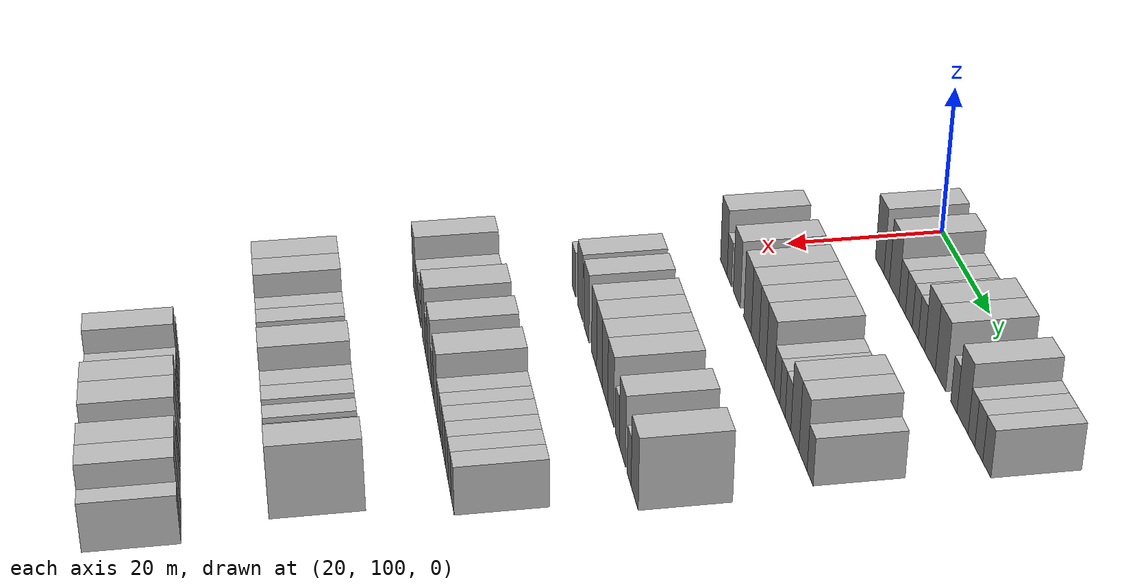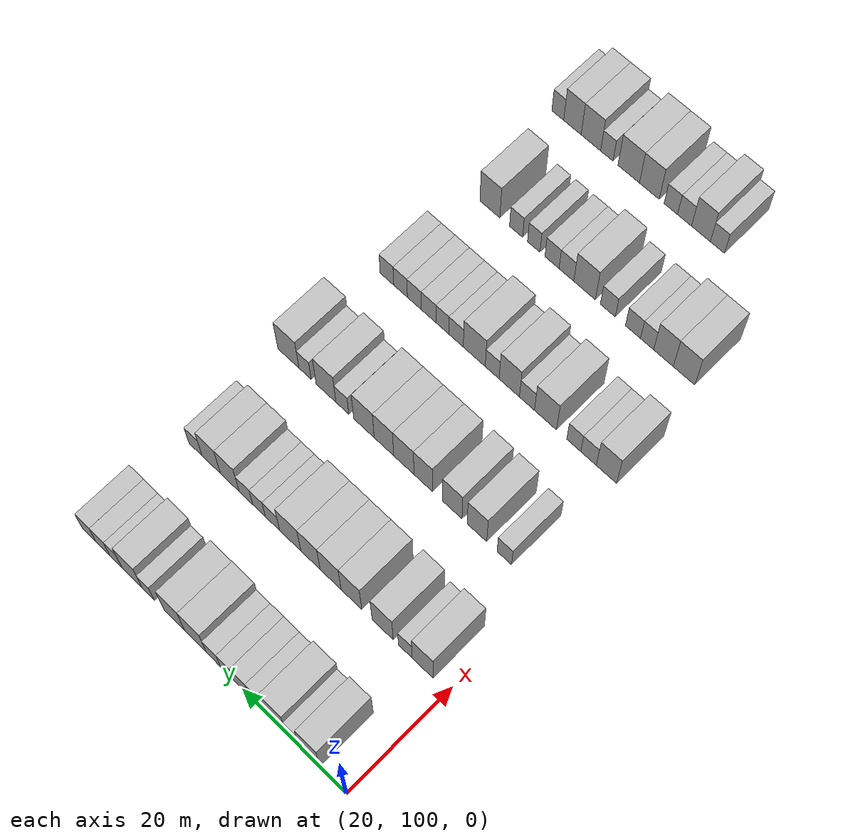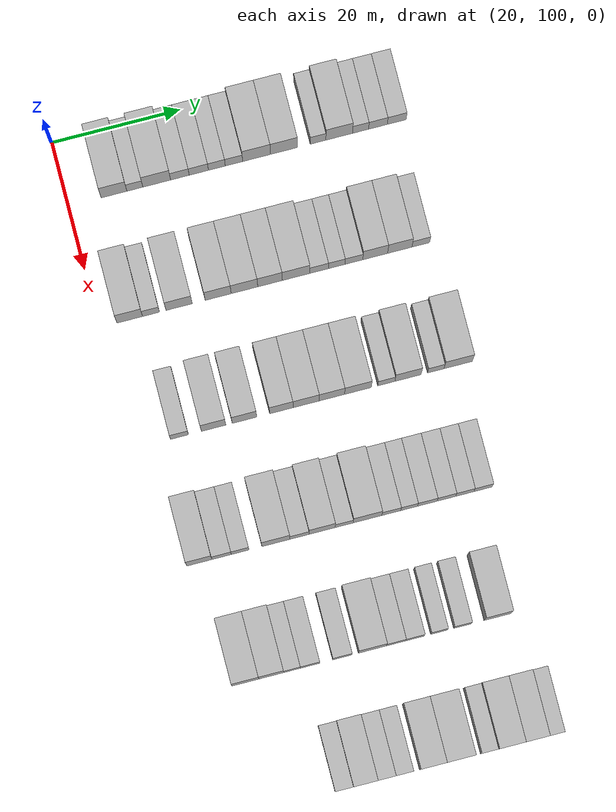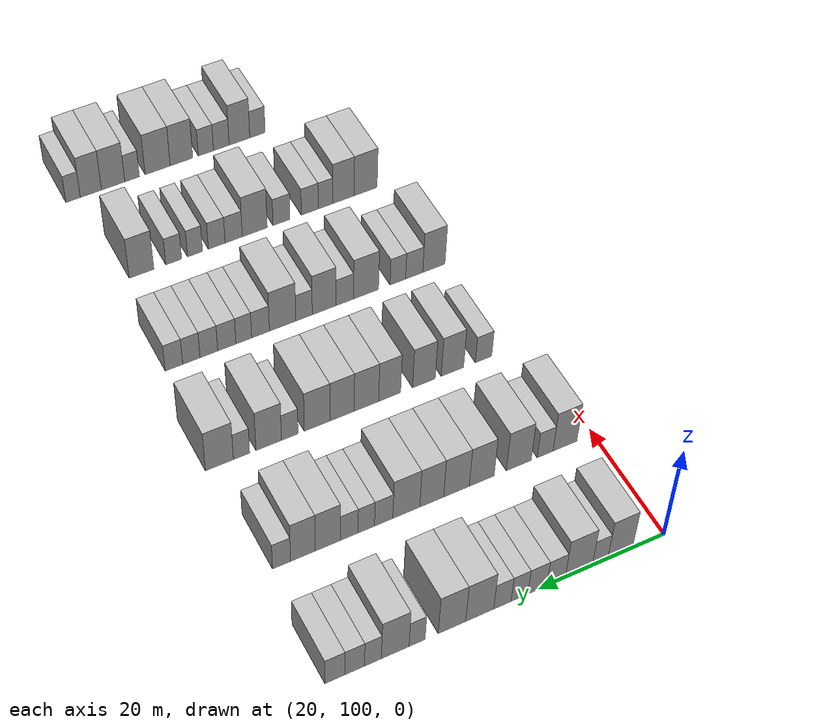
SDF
<sdf version="1.6">
 <world name="default">
  <model name="building_123">
   <static>1</static>
   <pose>25.0000 107.1154 0 0.000000 0.000000 0.000000</pose>
   <link name="link">
    <pose>0 0 4.50 0 0 0</pose>
    <collision name="collision"><geometry><box><size>10.0000 4.0118 9.0000</size></box></geometry></collision>
    <visual name="visual">
     <cast_shadows>0</cast_shadows>
     <geometry><box><size>10.0000 4.0118 9.0000</size></box></geometry>
     <material>
      <script>
       <uri>model://HANNAS_wall/materials/scripts</uri>
       <uri>model://HANNAS_wall/materials/textures</uri>
       <name>vrc/HANNAS_wall</name>
      </script>
     </material>
    </visual>
   </link>
  </model>
  <model name="building_124">
   <static>1</static>
   <pose>25.0000 110.3565 0 0.000000 0.000000 0.000000</pose>
   <link name="link">
    <pose>0 0 3.00 0 0 0</pose>
    <collision name="collision"><geometry><box><size>10.0000 2.4706 6.0000</size></box></geometry></collision>
    <visual name="visual">
     <cast_shadows>0</cast_shadows>
     <geometry><box><size>10.0000 2.4706 6.0000</size></box></geometry>
     <material>
      <script>
       <uri>model://HANNAS_wall/materials/scripts</uri>
       <uri>model://HANNAS_wall/materials/textures</uri>
       <name>vrc/HANNAS_wall</name>
      </script>
     </material>
    </visual>
   </link>
  </model>
  <model name="building_125">
   <static>1</static>
   <pose>25.0000 113.7517 0 0.000000 0.000000 0.000000</pose>
   <link name="link">
    <pose>0 0 4.50 0 0 0</pose>
    <collision name="collision"><geometry><box><size>10.0000 4.3196 9.0000</size></box></geometry></collision>
    <visual name="visual">
     <cast_shadows>0</cast_shadows>
     <geometry><box><size>10.0000 4.3196 9.0000</size></box></geometry>
     <material>
      <script>
       <uri>model://HANNAS_wall/materials/scripts</uri>
       <uri>model://HANNAS_wall/materials/textures</uri>
       <name>vrc/HANNAS_wall</name>
      </script>
     </material>
    </visual>
   </link>
  </model>
  <model name="building_126">
   <static>1</static>
   <pose>25.0000 117.3569 0 0.000000 0.000000 0.000000</pose>
   <link name="link">
    <pose>0 0 3.00 0 0 0</pose>
    <collision name="collision"><geometry><box><size>10.0000 2.8909 6.0000</size></box></geometry></collision>
    <visual name="visual">
     <cast_shadows>0</cast_shadows>
     <geometry><box><size>10.0000 2.8909 6.0000</size></box></geometry>
     <material>
      <script>
       <uri>model://HANNAS_wall/materials/scripts</uri>
       <uri>model://HANNAS_wall/materials/textures</uri>
       <name>vrc/HANNAS_wall</name>
      </script>
     </material>
    </visual>
   </link>
  </model>
  <model name="building_127">
   <static>1</static>
   <pose>25.0000 120.2966 0 0.000000 0.000000 0.000000</pose>
   <link name="link">
    <pose>0 0 3.00 0 0 0</pose>
    <collision name="collision"><geometry><box><size>10.0000 2.9885 6.0000</size></box></geometry></collision>
    <visual name="visual">
     <cast_shadows>0</cast_shadows>
     <geometry><box><size>10.0000 2.9885 6.0000</size></box></geometry>
     <material>
      <script>
       <uri>model://HANNAS_wall/materials/scripts</uri>
       <uri>model://HANNAS_wall/materials/textures</uri>
       <name>vrc/HANNAS_wall</name>
      </script>
     </material>
    </visual>
   </link>
  </model>
  <model name="building_128">
   <static>1</static>
   <pose>25.0000 123.0992 0 0.000000 0.000000 0.000000</pose>
   <link name="link">
    <pose>0 0 3.00 0 0 0</pose>
    <collision name="collision"><geometry><box><size>10.0000 2.6167 6.0000</size></box></geometry></collision>
    <visual name="visual">
     <cast_shadows>0</cast_shadows>
     <geometry><box><size>10.0000 2.6167 6.0000</size></box></geometry>
     <material>
      <script>
       <uri>model://HANNAS_wall/materials/scripts</uri>
       <uri>model://HANNAS_wall/materials/textures</uri>
       <name>vrc/HANNAS_wall</name>
      </script>
     </material>
    </visual>
   </link>
  </model>
  <model name="building_129">
   <static>1</static>
   <pose>25.0000 125.7601 0 0.000000 0.000000 0.000000</pose>
   <link name="link">
    <pose>0 0 3.00 0 0 0</pose>
    <collision name="collision"><geometry><box><size>10.0000 2.7051 6.0000</size></box></geometry></collision>
    <visual name="visual">
     <cast_shadows>0</cast_shadows>
     <geometry><box><size>10.0000 2.7051 6.0000</size></box></geometry>
     <material>
      <script>
       <uri>model://HANNAS_wall/materials/scripts</uri>
       <uri>model://HANNAS_wall/materials/textures</uri>
       <name>vrc/HANNAS_wall</name>
      </script>
     </material>
    </visual>
   </link>
  </model>
  <model name="building_130">
   <static>1</static>
   <pose>25.0000 129.2807 0 0.000000 0.000000 0.000000</pose>
   <link name="link">
    <pose>0 0 4.50 0 0 0</pose>
    <collision name="collision"><geometry><box><size>10.0000 4.3361 9.0000</size></box></geometry></collision>
    <visual name="visual">
     <cast_shadows>0</cast_shadows>
     <geometry><box><size>10.0000 4.3361 9.0000</size></box></geometry>
     <material>
      <script>
       <uri>model://HANNAS_wall/materials/scripts</uri>
       <uri>model://HANNAS_wall/materials/textures</uri>
       <name>vrc/HANNAS_wall</name>
      </script>
     </material>
    </visual>
   </link>
  </model>
  <model name="building_131">
   <static>1</static>
   <pose>25.0000 133.5443 0 0.000000 0.000000 0.000000</pose>
   <link name="link">
    <pose>0 0 4.50 0 0 0</pose>
    <collision name="collision"><geometry><box><size>10.0000 4.1912 9.0000</size></box></geometry></collision>
    <visual name="visual">
     <cast_shadows>0</cast_shadows>
     <geometry><box><size>10.0000 4.1912 9.0000</size></box></geometry>
     <material>
      <script>
       <uri>model://HANNAS_wall/materials/scripts</uri>
       <uri>model://HANNAS_wall/materials/textures</uri>
       <name>vrc/HANNAS_wall</name>
      </script>
     </material>
    </visual>
   </link>
  </model>
  <model name="building_132">
   <static>1</static>
   <pose>25.0000 138.8533 0 0.000000 0.000000 0.000000</pose>
   <link name="link">
    <pose>0 0 3.00 0 0 0</pose>
    <collision name="collision"><geometry><box><size>10.0000 2.4268 6.0000</size></box></geometry></collision>
    <visual name="visual">
     <cast_shadows>0</cast_shadows>
     <geometry><box><size>10.0000 2.4268 6.0000</size></box></geometry>
     <material>
      <script>
       <uri>model://HANNAS_wall/materials/scripts</uri>
       <uri>model://HANNAS_wall/materials/textures</uri>
       <name>vrc/HANNAS_wall</name>
      </script>
     </material>
    </visual>
   </link>
  </model>
  <model name="building_133">
   <static>1</static>
   <pose>25.0000 142.1488 0 0.000000 0.000000 0.000000</pose>
   <link name="link">
    <pose>0 0 4.50 0 0 0</pose>
    <collision name="collision"><geometry><box><size>10.0000 4.1640 9.0000</size></box></geometry></collision>
    <visual name="visual">
     <cast_shadows>0</cast_shadows>
     <geometry><box><size>10.0000 4.1640 9.0000</size></box></geometry>
     <material>
      <script>
       <uri>model://HANNAS_wall/materials/scripts</uri>
       <uri>model://HANNAS_wall/materials/textures</uri>
       <name>vrc/HANNAS_wall</name>
      </script>
     </material>
    </visual>
   </link>
  </model>
  <model name="building_134">
   <static>1</static>
   <pose>25.0000 145.4824 0 0.000000 0.000000 0.000000</pose>
   <link name="link">
    <pose>0 0 3.00 0 0 0</pose>
    <collision name="collision"><geometry><box><size>10.0000 2.5032 6.0000</size></box></geometry></collision>
    <visual name="visual">
     <cast_shadows>0</cast_shadows>
     <geometry><box><size>10.0000 2.5032 6.0000</size></box></geometry>
     <material>
      <script>
       <uri>model://HANNAS_wall/materials/scripts</uri>
       <uri>model://HANNAS_wall/materials/textures</uri>
       <name>vrc/HANNAS_wall</name>
      </script>
     </material>
    </visual>
   </link>
  </model>
  <model name="building_135">
   <static>1</static>
   <pose>25.0000 148.1906 0 0.000000 0.000000 0.000000</pose>
   <link name="link">
    <pose>0 0 3.00 0 0 0</pose>
    <collision name="collision"><geometry><box><size>10.0000 2.9133 6.0000</size></box></geometry></collision>
    <visual name="visual">
     <cast_shadows>0</cast_shadows>
     <geometry><box><size>10.0000 2.9133 6.0000</size></box></geometry>
     <material>
      <script>
       <uri>model://HANNAS_wall/materials/scripts</uri>
       <uri>model://HANNAS_wall/materials/textures</uri>
       <name>vrc/HANNAS_wall</name>
      </script>
     </material>
    </visual>
   </link>
  </model>
  <model name="building_136">
   <static>1</static>
   <pose>25.0000 151.1215 0 0.000000 0.000000 0.000000</pose>
   <link name="link">
    <pose>0 0 3.00 0 0 0</pose>
    <collision name="collision"><geometry><box><size>10.0000 2.9484 6.0000</size></box></geometry></collision>
    <visual name="visual">
     <cast_shadows>0</cast_shadows>
     <geometry><box><size>10.0000 2.9484 6.0000</size></box></geometry>
     <material>
      <script>
       <uri>model://HANNAS_wall/materials/scripts</uri>
       <uri>model://HANNAS_wall/materials/textures</uri>
       <name>vrc/HANNAS_wall</name>
      </script>
     </material>
    </visual>
   </link>
  </model>
  <model name="building_298">
   <static>1</static>
   <pose>44.0000 104.7258 0 0.000000 0.000000 0.000000</pose>
   <link name="link">
    <pose>0 0 4.50 0 0 0</pose>
    <collision name="collision"><geometry><box><size>10.0000 3.9755 9.0000</size></box></geometry></collision>
    <visual name="visual">
     <cast_shadows>0</cast_shadows>
     <geometry><box><size>10.0000 3.9755 9.0000</size></box></geometry>
     <material>
      <script>
       <uri>model://HANNAS_wall/materials/scripts</uri>
       <uri>model://HANNAS_wall/materials/textures</uri>
       <name>vrc/HANNAS_wall</name>
      </script>
     </material>
    </visual>
   </link>
  </model>
  <model name="building_299">
   <static>1</static>
   <pose>44.0000 108.0229 0 0.000000 0.000000 0.000000</pose>
   <link name="link">
    <pose>0 0 3.00 0 0 0</pose>
    <collision name="collision"><geometry><box><size>10.0000 2.6188 6.0000</size></box></geometry></collision>
    <visual name="visual">
     <cast_shadows>0</cast_shadows>
     <geometry><box><size>10.0000 2.6188 6.0000</size></box></geometry>
     <material>
      <script>
       <uri>model://HANNAS_wall/materials/scripts</uri>
       <uri>model://HANNAS_wall/materials/textures</uri>
       <name>vrc/HANNAS_wall</name>
      </script>
     </material>
    </visual>
   </link>
  </model>
  <model name="building_300">
   <static>1</static>
   <pose>44.0000 112.3701 0 0.000000 0.000000 0.000000</pose>
   <link name="link">
    <pose>0 0 4.50 0 0 0</pose>
    <collision name="collision"><geometry><box><size>10.0000 4.0756 9.0000</size></box></geometry></collision>
    <visual name="visual">
     <cast_shadows>0</cast_shadows>
     <geometry><box><size>10.0000 4.0756 9.0000</size></box></geometry>
     <material>
      <script>
       <uri>model://HANNAS_wall/materials/scripts</uri>
       <uri>model://HANNAS_wall/materials/textures</uri>
       <name>vrc/HANNAS_wall</name>
      </script>
     </material>
    </visual>
   </link>
  </model>
  <model name="building_301">
   <static>1</static>
   <pose>44.0000 118.4263 0 0.000000 0.000000 0.000000</pose>
   <link name="link">
    <pose>0 0 4.50 0 0 0</pose>
    <collision name="collision"><geometry><box><size>10.0000 4.0368 9.0000</size></box></geometry></collision>
    <visual name="visual">
     <cast_shadows>0</cast_shadows>
     <geometry><box><size>10.0000 4.0368 9.0000</size></box></geometry>
     <material>
      <script>
       <uri>model://HANNAS_wall/materials/scripts</uri>
       <uri>model://HANNAS_wall/materials/textures</uri>
       <name>vrc/HANNAS_wall</name>
      </script>
     </material>
    </visual>
   </link>
  </model>
  <model name="building_302">
   <static>1</static>
   <pose>44.0000 122.5004 0 0.000000 0.000000 0.000000</pose>
   <link name="link">
    <pose>0 0 4.50 0 0 0</pose>
    <collision name="collision"><geometry><box><size>10.0000 4.1116 9.0000</size></box></geometry></collision>
    <visual name="visual">
     <cast_shadows>0</cast_shadows>
     <geometry><box><size>10.0000 4.1116 9.0000</size></box></geometry>
     <material>
      <script>
       <uri>model://HANNAS_wall/materials/scripts</uri>
       <uri>model://HANNAS_wall/materials/textures</uri>
       <name>vrc/HANNAS_wall</name>
      </script>
     </material>
    </visual>
   </link>
  </model>
  <model name="building_303">
   <static>1</static>
   <pose>44.0000 126.4657 0 0.000000 0.000000 0.000000</pose>
   <link name="link">
    <pose>0 0 4.50 0 0 0</pose>
    <collision name="collision"><geometry><box><size>10.0000 3.8189 9.0000</size></box></geometry></collision>
    <visual name="visual">
     <cast_shadows>0</cast_shadows>
     <geometry><box><size>10.0000 3.8189 9.0000</size></box></geometry>
     <material>
      <script>
       <uri>model://HANNAS_wall/materials/scripts</uri>
       <uri>model://HANNAS_wall/materials/textures</uri>
       <name>vrc/HANNAS_wall</name>
      </script>
     </material>
    </visual>
   </link>
  </model>
  <model name="building_304">
   <static>1</static>
   <pose>44.0000 130.5166 0 0.000000 0.000000 0.000000</pose>
   <link name="link">
    <pose>0 0 4.50 0 0 0</pose>
    <collision name="collision"><geometry><box><size>10.0000 4.2828 9.0000</size></box></geometry></collision>
    <visual name="visual">
     <cast_shadows>0</cast_shadows>
     <geometry><box><size>10.0000 4.2828 9.0000</size></box></geometry>
     <material>
      <script>
       <uri>model://HANNAS_wall/materials/scripts</uri>
       <uri>model://HANNAS_wall/materials/textures</uri>
       <name>vrc/HANNAS_wall</name>
      </script>
     </material>
    </visual>
   </link>
  </model>
  <model name="building_305">
   <static>1</static>
   <pose>44.0000 134.0922 0 0.000000 0.000000 0.000000</pose>
   <link name="link">
    <pose>0 0 3.00 0 0 0</pose>
    <collision name="collision"><geometry><box><size>10.0000 2.8684 6.0000</size></box></geometry></collision>
    <visual name="visual">
     <cast_shadows>0</cast_shadows>
     <geometry><box><size>10.0000 2.8684 6.0000</size></box></geometry>
     <material>
      <script>
       <uri>model://HANNAS_wall/materials/scripts</uri>
       <uri>model://HANNAS_wall/materials/textures</uri>
       <name>vrc/HANNAS_wall</name>
      </script>
     </material>
    </visual>
   </link>
  </model>
  <model name="building_306">
   <static>1</static>
   <pose>44.0000 136.8168 0 0.000000 0.000000 0.000000</pose>
   <link name="link">
    <pose>0 0 3.00 0 0 0</pose>
    <collision name="collision"><geometry><box><size>10.0000 2.5810 6.0000</size></box></geometry></collision>
    <visual name="visual">
     <cast_shadows>0</cast_shadows>
     <geometry><box><size>10.0000 2.5810 6.0000</size></box></geometry>
     <material>
      <script>
       <uri>model://HANNAS_wall/materials/scripts</uri>
       <uri>model://HANNAS_wall/materials/textures</uri>
       <name>vrc/HANNAS_wall</name>
      </script>
     </material>
    </visual>
   </link>
  </model>
  <model name="building_307">
   <static>1</static>
   <pose>44.0000 139.4837 0 0.000000 0.000000 0.000000</pose>
   <link name="link">
    <pose>0 0 3.00 0 0 0</pose>
    <collision name="collision"><geometry><box><size>10.0000 2.7528 6.0000</size></box></geometry></collision>
    <visual name="visual">
     <cast_shadows>0</cast_shadows>
     <geometry><box><size>10.0000 2.7528 6.0000</size></box></geometry>
     <material>
      <script>
       <uri>model://HANNAS_wall/materials/scripts</uri>
       <uri>model://HANNAS_wall/materials/textures</uri>
       <name>vrc/HANNAS_wall</name>
      </script>
     </material>
    </visual>
   </link>
  </model>
  <model name="building_308">
   <static>1</static>
   <pose>44.0000 142.7912 0 0.000000 0.000000 0.000000</pose>
   <link name="link">
    <pose>0 0 4.50 0 0 0</pose>
    <collision name="collision"><geometry><box><size>10.0000 3.8622 9.0000</size></box></geometry></collision>
    <visual name="visual">
     <cast_shadows>0</cast_shadows>
     <geometry><box><size>10.0000 3.8622 9.0000</size></box></geometry>
     <material>
      <script>
       <uri>model://HANNAS_wall/materials/scripts</uri>
       <uri>model://HANNAS_wall/materials/textures</uri>
       <name>vrc/HANNAS_wall</name>
      </script>
     </material>
    </visual>
   </link>
  </model>
  <model name="building_309">
   <static>1</static>
   <pose>44.0000 146.6179 0 0.000000 0.000000 0.000000</pose>
   <link name="link">
    <pose>0 0 4.50 0 0 0</pose>
    <collision name="collision"><geometry><box><size>10.0000 3.7910 9.0000</size></box></geometry></collision>
    <visual name="visual">
     <cast_shadows>0</cast_shadows>
     <geometry><box><size>10.0000 3.7910 9.0000</size></box></geometry>
     <material>
      <script>
       <uri>model://HANNAS_wall/materials/scripts</uri>
       <uri>model://HANNAS_wall/materials/textures</uri>
       <name>vrc/HANNAS_wall</name>
      </script>
     </material>
    </visual>
   </link>
  </model>
  <model name="building_310">
   <static>1</static>
   <pose>44.0000 149.8883 0 0.000000 0.000000 0.000000</pose>
   <link name="link">
    <pose>0 0 3.00 0 0 0</pose>
    <collision name="collision"><geometry><box><size>10.0000 2.7498 6.0000</size></box></geometry></collision>
    <visual name="visual">
     <cast_shadows>0</cast_shadows>
     <geometry><box><size>10.0000 2.7498 6.0000</size></box></geometry>
     <material>
      <script>
       <uri>model://HANNAS_wall/materials/scripts</uri>
       <uri>model://HANNAS_wall/materials/textures</uri>
       <name>vrc/HANNAS_wall</name>
      </script>
     </material>
    </visual>
   </link>
  </model>
  <model name="building_463">
   <static>1</static>
   <pose>63.0000 107.5546 0 0.000000 0.000000 0.000000</pose>
   <link name="link">
    <pose>0 0 3.00 0 0 0</pose>
    <collision name="collision"><geometry><box><size>10.0000 2.7706 6.0000</size></box></geometry></collision>
    <visual name="visual">
     <cast_shadows>0</cast_shadows>
     <geometry><box><size>10.0000 2.7706 6.0000</size></box></geometry>
     <material>
      <script>
       <uri>model://HANNAS_wall/materials/scripts</uri>
       <uri>model://HANNAS_wall/materials/textures</uri>
       <name>vrc/HANNAS_wall</name>
      </script>
     </material>
    </visual>
   </link>
  </model>
  <model name="building_464">
   <static>1</static>
   <pose>63.0000 112.8269 0 0.000000 0.000000 0.000000</pose>
   <link name="link">
    <pose>0 0 4.50 0 0 0</pose>
    <collision name="collision"><geometry><box><size>10.0000 3.7742 9.0000</size></box></geometry></collision>
    <visual name="visual">
     <cast_shadows>0</cast_shadows>
     <geometry><box><size>10.0000 3.7742 9.0000</size></box></geometry>
     <material>
      <script>
       <uri>model://HANNAS_wall/materials/scripts</uri>
       <uri>model://HANNAS_wall/materials/textures</uri>
       <name>vrc/HANNAS_wall</name>
      </script>
     </material>
    </visual>
   </link>
  </model>
  <model name="building_465">
   <static>1</static>
   <pose>63.0000 117.6051 0 0.000000 0.000000 0.000000</pose>
   <link name="link">
    <pose>0 0 4.50 0 0 0</pose>
    <collision name="collision"><geometry><box><size>10.0000 3.7822 9.0000</size></box></geometry></collision>
    <visual name="visual">
     <cast_shadows>0</cast_shadows>
     <geometry><box><size>10.0000 3.7822 9.0000</size></box></geometry>
     <material>
      <script>
       <uri>model://HANNAS_wall/materials/scripts</uri>
       <uri>model://HANNAS_wall/materials/textures</uri>
       <name>vrc/HANNAS_wall</name>
      </script>
     </material>
    </visual>
   </link>
  </model>
  <model name="building_466">
   <static>1</static>
   <pose>63.0000 123.3096 0 0.000000 0.000000 0.000000</pose>
   <link name="link">
    <pose>0 0 4.50 0 0 0</pose>
    <collision name="collision"><geometry><box><size>10.0000 3.6267 9.0000</size></box></geometry></collision>
    <visual name="visual">
     <cast_shadows>0</cast_shadows>
     <geometry><box><size>10.0000 3.6267 9.0000</size></box></geometry>
     <material>
      <script>
       <uri>model://HANNAS_wall/materials/scripts</uri>
       <uri>model://HANNAS_wall/materials/textures</uri>
       <name>vrc/HANNAS_wall</name>
      </script>
     </material>
    </visual>
   </link>
  </model>
  <model name="building_467">
   <static>1</static>
   <pose>63.0000 127.1440 0 0.000000 0.000000 0.000000</pose>
   <link name="link">
    <pose>0 0 4.50 0 0 0</pose>
    <collision name="collision"><geometry><box><size>10.0000 4.0422 9.0000</size></box></geometry></collision>
    <visual name="visual">
     <cast_shadows>0</cast_shadows>
     <geometry><box><size>10.0000 4.0422 9.0000</size></box></geometry>
     <material>
      <script>
       <uri>model://HANNAS_wall/materials/scripts</uri>
       <uri>model://HANNAS_wall/materials/textures</uri>
       <name>vrc/HANNAS_wall</name>
      </script>
     </material>
    </visual>
   </link>
  </model>
  <model name="building_468">
   <static>1</static>
   <pose>63.0000 131.1255 0 0.000000 0.000000 0.000000</pose>
   <link name="link">
    <pose>0 0 4.50 0 0 0</pose>
    <collision name="collision"><geometry><box><size>10.0000 3.9207 9.0000</size></box></geometry></collision>
    <visual name="visual">
     <cast_shadows>0</cast_shadows>
     <geometry><box><size>10.0000 3.9207 9.0000</size></box></geometry>
     <material>
      <script>
       <uri>model://HANNAS_wall/materials/scripts</uri>
       <uri>model://HANNAS_wall/materials/textures</uri>
       <name>vrc/HANNAS_wall</name>
      </script>
     </material>
    </visual>
   </link>
  </model>
  <model name="building_469">
   <static>1</static>
   <pose>63.0000 135.1574 0 0.000000 0.000000 0.000000</pose>
   <link name="link">
    <pose>0 0 4.50 0 0 0</pose>
    <collision name="collision"><geometry><box><size>10.0000 4.1429 9.0000</size></box></geometry></collision>
    <visual name="visual">
     <cast_shadows>0</cast_shadows>
     <geometry><box><size>10.0000 4.1429 9.0000</size></box></geometry>
     <material>
      <script>
       <uri>model://HANNAS_wall/materials/scripts</uri>
       <uri>model://HANNAS_wall/materials/textures</uri>
       <name>vrc/HANNAS_wall</name>
      </script>
     </material>
    </visual>
   </link>
  </model>
  <model name="building_470">
   <static>1</static>
   <pose>63.0000 139.5498 0 0.000000 0.000000 0.000000</pose>
   <link name="link">
    <pose>0 0 3.00 0 0 0</pose>
    <collision name="collision"><geometry><box><size>10.0000 2.6420 6.0000</size></box></geometry></collision>
    <visual name="visual">
     <cast_shadows>0</cast_shadows>
     <geometry><box><size>10.0000 2.6420 6.0000</size></box></geometry>
     <material>
      <script>
       <uri>model://HANNAS_wall/materials/scripts</uri>
       <uri>model://HANNAS_wall/materials/textures</uri>
       <name>vrc/HANNAS_wall</name>
      </script>
     </material>
    </visual>
   </link>
  </model>
  <model name="building_471">
   <static>1</static>
   <pose>63.0000 142.9045 0 0.000000 0.000000 0.000000</pose>
   <link name="link">
    <pose>0 0 4.50 0 0 0</pose>
    <collision name="collision"><geometry><box><size>10.0000 4.0674 9.0000</size></box></geometry></collision>
    <visual name="visual">
     <cast_shadows>0</cast_shadows>
     <geometry><box><size>10.0000 4.0674 9.0000</size></box></geometry>
     <material>
      <script>
       <uri>model://HANNAS_wall/materials/scripts</uri>
       <uri>model://HANNAS_wall/materials/textures</uri>
       <name>vrc/HANNAS_wall</name>
      </script>
     </material>
    </visual>
   </link>
  </model>
  <model name="building_472">
   <static>1</static>
   <pose>63.0000 147.2111 0 0.000000 0.000000 0.000000</pose>
   <link name="link">
    <pose>0 0 3.00 0 0 0</pose>
    <collision name="collision"><geometry><box><size>10.0000 2.5458 6.0000</size></box></geometry></collision>
    <visual name="visual">
     <cast_shadows>0</cast_shadows>
     <geometry><box><size>10.0000 2.5458 6.0000</size></box></geometry>
     <material>
      <script>
       <uri>model://HANNAS_wall/materials/scripts</uri>
       <uri>model://HANNAS_wall/materials/textures</uri>
       <name>vrc/HANNAS_wall</name>
      </script>
     </material>
    </visual>
   </link>
  </model>
  <model name="building_473">
   <static>1</static>
   <pose>63.0000 150.6833 0 0.000000 0.000000 0.000000</pose>
   <link name="link">
    <pose>0 0 4.50 0 0 0</pose>
    <collision name="collision"><geometry><box><size>10.0000 4.3985 9.0000</size></box></geometry></collision>
    <visual name="visual">
     <cast_shadows>0</cast_shadows>
     <geometry><box><size>10.0000 4.3985 9.0000</size></box></geometry>
     <material>
      <script>
       <uri>model://HANNAS_wall/materials/scripts</uri>
       <uri>model://HANNAS_wall/materials/textures</uri>
       <name>vrc/HANNAS_wall</name>
      </script>
     </material>
    </visual>
   </link>
  </model>
  <model name="building_629">
   <static>1</static>
   <pose>82.0000 105.7619 0 0.000000 0.000000 0.000000</pose>
   <link name="link">
    <pose>0 0 4.50 0 0 0</pose>
    <collision name="collision"><geometry><box><size>10.0000 3.8831 9.0000</size></box></geometry></collision>
    <visual name="visual">
     <cast_shadows>0</cast_shadows>
     <geometry><box><size>10.0000 3.8831 9.0000</size></box></geometry>
     <material>
      <script>
       <uri>model://HANNAS_wall/materials/scripts</uri>
       <uri>model://HANNAS_wall/materials/textures</uri>
       <name>vrc/HANNAS_wall</name>
      </script>
     </material>
    </visual>
   </link>
  </model>
  <model name="building_630">
   <static>1</static>
   <pose>82.0000 109.1957 0 0.000000 0.000000 0.000000</pose>
   <link name="link">
    <pose>0 0 3.00 0 0 0</pose>
    <collision name="collision"><geometry><box><size>10.0000 2.9845 6.0000</size></box></geometry></collision>
    <visual name="visual">
     <cast_shadows>0</cast_shadows>
     <geometry><box><size>10.0000 2.9845 6.0000</size></box></geometry>
     <material>
      <script>
       <uri>model://HANNAS_wall/materials/scripts</uri>
       <uri>model://HANNAS_wall/materials/textures</uri>
       <name>vrc/HANNAS_wall</name>
      </script>
     </material>
    </visual>
   </link>
  </model>
  <model name="building_631">
   <static>1</static>
   <pose>82.0000 112.0386 0 0.000000 0.000000 0.000000</pose>
   <link name="link">
    <pose>0 0 3.00 0 0 0</pose>
    <collision name="collision"><geometry><box><size>10.0000 2.7013 6.0000</size></box></geometry></collision>
    <visual name="visual">
     <cast_shadows>0</cast_shadows>
     <geometry><box><size>10.0000 2.7013 6.0000</size></box></geometry>
     <material>
      <script>
       <uri>model://HANNAS_wall/materials/scripts</uri>
       <uri>model://HANNAS_wall/materials/textures</uri>
       <name>vrc/HANNAS_wall</name>
      </script>
     </material>
    </visual>
   </link>
  </model>
  <model name="building_632">
   <static>1</static>
   <pose>82.0000 117.5398 0 0.000000 0.000000 0.000000</pose>
   <link name="link">
    <pose>0 0 4.50 0 0 0</pose>
    <collision name="collision"><geometry><box><size>10.0000 4.3011 9.0000</size></box></geometry></collision>
    <visual name="visual">
     <cast_shadows>0</cast_shadows>
     <geometry><box><size>10.0000 4.3011 9.0000</size></box></geometry>
     <material>
      <script>
       <uri>model://HANNAS_wall/materials/scripts</uri>
       <uri>model://HANNAS_wall/materials/textures</uri>
       <name>vrc/HANNAS_wall</name>
      </script>
     </material>
    </visual>
   </link>
  </model>
  <model name="building_633">
   <static>1</static>
   <pose>82.0000 121.1716 0 0.000000 0.000000 0.000000</pose>
   <link name="link">
    <pose>0 0 3.00 0 0 0</pose>
    <collision name="collision"><geometry><box><size>10.0000 2.9623 6.0000</size></box></geometry></collision>
    <visual name="visual">
     <cast_shadows>0</cast_shadows>
     <geometry><box><size>10.0000 2.9623 6.0000</size></box></geometry>
     <material>
      <script>
       <uri>model://HANNAS_wall/materials/scripts</uri>
       <uri>model://HANNAS_wall/materials/textures</uri>
       <name>vrc/HANNAS_wall</name>
      </script>
     </material>
    </visual>
   </link>
  </model>
  <model name="building_634">
   <static>1</static>
   <pose>82.0000 124.6682 0 0.000000 0.000000 0.000000</pose>
   <link name="link">
    <pose>0 0 4.50 0 0 0</pose>
    <collision name="collision"><geometry><box><size>10.0000 4.0309 9.0000</size></box></geometry></collision>
    <visual name="visual">
     <cast_shadows>0</cast_shadows>
     <geometry><box><size>10.0000 4.0309 9.0000</size></box></geometry>
     <material>
      <script>
       <uri>model://HANNAS_wall/materials/scripts</uri>
       <uri>model://HANNAS_wall/materials/textures</uri>
       <name>vrc/HANNAS_wall</name>
      </script>
     </material>
    </visual>
   </link>
  </model>
  <model name="building_635">
   <static>1</static>
   <pose>82.0000 128.0683 0 0.000000 0.000000 0.000000</pose>
   <link name="link">
    <pose>0 0 3.00 0 0 0</pose>
    <collision name="collision"><geometry><box><size>10.0000 2.7692 6.0000</size></box></geometry></collision>
    <visual name="visual">
     <cast_shadows>0</cast_shadows>
     <geometry><box><size>10.0000 2.7692 6.0000</size></box></geometry>
     <material>
      <script>
       <uri>model://HANNAS_wall/materials/scripts</uri>
       <uri>model://HANNAS_wall/materials/textures</uri>
       <name>vrc/HANNAS_wall</name>
      </script>
     </material>
    </visual>
   </link>
  </model>
  <model name="building_636">
   <static>1</static>
   <pose>82.0000 131.6593 0 0.000000 0.000000 0.000000</pose>
   <link name="link">
    <pose>0 0 4.50 0 0 0</pose>
    <collision name="collision"><geometry><box><size>10.0000 4.4128 9.0000</size></box></geometry></collision>
    <visual name="visual">
     <cast_shadows>0</cast_shadows>
     <geometry><box><size>10.0000 4.4128 9.0000</size></box></geometry>
     <material>
      <script>
       <uri>model://HANNAS_wall/materials/scripts</uri>
       <uri>model://HANNAS_wall/materials/textures</uri>
       <name>vrc/HANNAS_wall</name>
      </script>
     </material>
    </visual>
   </link>
  </model>
  <model name="building_637">
   <static>1</static>
   <pose>82.0000 135.3381 0 0.000000 0.000000 0.000000</pose>
   <link name="link">
    <pose>0 0 3.00 0 0 0</pose>
    <collision name="collision"><geometry><box><size>10.0000 2.9449 6.0000</size></box></geometry></collision>
    <visual name="visual">
     <cast_shadows>0</cast_shadows>
     <geometry><box><size>10.0000 2.9449 6.0000</size></box></geometry>
     <material>
      <script>
       <uri>model://HANNAS_wall/materials/scripts</uri>
       <uri>model://HANNAS_wall/materials/textures</uri>
       <name>vrc/HANNAS_wall</name>
      </script>
     </material>
    </visual>
   </link>
  </model>
  <model name="building_638">
   <static>1</static>
   <pose>82.0000 138.1037 0 0.000000 0.000000 0.000000</pose>
   <link name="link">
    <pose>0 0 3.00 0 0 0</pose>
    <collision name="collision"><geometry><box><size>10.0000 2.5864 6.0000</size></box></geometry></collision>
    <visual name="visual">
     <cast_shadows>0</cast_shadows>
     <geometry><box><size>10.0000 2.5864 6.0000</size></box></geometry>
     <material>
      <script>
       <uri>model://HANNAS_wall/materials/scripts</uri>
       <uri>model://HANNAS_wall/materials/textures</uri>
       <name>vrc/HANNAS_wall</name>
      </script>
     </material>
    </visual>
   </link>
  </model>
  <model name="building_639">
   <static>1</static>
   <pose>82.0000 140.8967 0 0.000000 0.000000 0.000000</pose>
   <link name="link">
    <pose>0 0 3.00 0 0 0</pose>
    <collision name="collision"><geometry><box><size>10.0000 2.9995 6.0000</size></box></geometry></collision>
    <visual name="visual">
     <cast_shadows>0</cast_shadows>
     <geometry><box><size>10.0000 2.9995 6.0000</size></box></geometry>
     <material>
      <script>
       <uri>model://HANNAS_wall/materials/scripts</uri>
       <uri>model://HANNAS_wall/materials/textures</uri>
       <name>vrc/HANNAS_wall</name>
      </script>
     </material>
    </visual>
   </link>
  </model>
  <model name="building_640">
   <static>1</static>
   <pose>82.0000 143.8401 0 0.000000 0.000000 0.000000</pose>
   <link name="link">
    <pose>0 0 3.00 0 0 0</pose>
    <collision name="collision"><geometry><box><size>10.0000 2.8873 6.0000</size></box></geometry></collision>
    <visual name="visual">
     <cast_shadows>0</cast_shadows>
     <geometry><box><size>10.0000 2.8873 6.0000</size></box></geometry>
     <material>
      <script>
       <uri>model://HANNAS_wall/materials/scripts</uri>
       <uri>model://HANNAS_wall/materials/textures</uri>
       <name>vrc/HANNAS_wall</name>
      </script>
     </material>
    </visual>
   </link>
  </model>
  <model name="building_641">
   <static>1</static>
   <pose>82.0000 146.6921 0 0.000000 0.000000 0.000000</pose>
   <link name="link">
    <pose>0 0 3.00 0 0 0</pose>
    <collision name="collision"><geometry><box><size>10.0000 2.8167 6.0000</size></box></geometry></collision>
    <visual name="visual">
     <cast_shadows>0</cast_shadows>
     <geometry><box><size>10.0000 2.8167 6.0000</size></box></geometry>
     <material>
      <script>
       <uri>model://HANNAS_wall/materials/scripts</uri>
       <uri>model://HANNAS_wall/materials/textures</uri>
       <name>vrc/HANNAS_wall</name>
      </script>
     </material>
    </visual>
   </link>
  </model>
  <model name="building_642">
   <static>1</static>
   <pose>82.0000 149.5155 0 0.000000 0.000000 0.000000</pose>
   <link name="link">
    <pose>0 0 3.00 0 0 0</pose>
    <collision name="collision"><geometry><box><size>10.0000 2.8302 6.0000</size></box></geometry></collision>
    <visual name="visual">
     <cast_shadows>0</cast_shadows>
     <geometry><box><size>10.0000 2.8302 6.0000</size></box></geometry>
     <material>
      <script>
       <uri>model://HANNAS_wall/materials/scripts</uri>
       <uri>model://HANNAS_wall/materials/textures</uri>
       <name>vrc/HANNAS_wall</name>
      </script>
     </material>
    </visual>
   </link>
  </model>
  <model name="building_803">
   <static>1</static>
   <pose>101.0000 107.9602 0 0.000000 0.000000 0.000000</pose>
   <link name="link">
    <pose>0 0 4.50 0 0 0</pose>
    <collision name="collision"><geometry><box><size>10.0000 4.1302 9.0000</size></box></geometry></collision>
    <visual name="visual">
     <cast_shadows>0</cast_shadows>
     <geometry><box><size>10.0000 4.1302 9.0000</size></box></geometry>
     <material>
      <script>
       <uri>model://HANNAS_wall/materials/scripts</uri>
       <uri>model://HANNAS_wall/materials/textures</uri>
       <name>vrc/HANNAS_wall</name>
      </script>
     </material>
    </visual>
   </link>
  </model>
  <model name="building_804">
   <static>1</static>
   <pose>101.0000 111.9265 0 0.000000 0.000000 0.000000</pose>
   <link name="link">
    <pose>0 0 4.50 0 0 0</pose>
    <collision name="collision"><geometry><box><size>10.0000 3.8024 9.0000</size></box></geometry></collision>
    <visual name="visual">
     <cast_shadows>0</cast_shadows>
     <geometry><box><size>10.0000 3.8024 9.0000</size></box></geometry>
     <material>
      <script>
       <uri>model://HANNAS_wall/materials/scripts</uri>
       <uri>model://HANNAS_wall/materials/textures</uri>
       <name>vrc/HANNAS_wall</name>
      </script>
     </material>
    </visual>
   </link>
  </model>
  <model name="building_805">
   <static>1</static>
   <pose>101.0000 115.1082 0 0.000000 0.000000 0.000000</pose>
   <link name="link">
    <pose>0 0 3.00 0 0 0</pose>
    <collision name="collision"><geometry><box><size>10.0000 2.5611 6.0000</size></box></geometry></collision>
    <visual name="visual">
     <cast_shadows>0</cast_shadows>
     <geometry><box><size>10.0000 2.5611 6.0000</size></box></geometry>
     <material>
      <script>
       <uri>model://HANNAS_wall/materials/scripts</uri>
       <uri>model://HANNAS_wall/materials/textures</uri>
       <name>vrc/HANNAS_wall</name>
      </script>
     </material>
    </visual>
   </link>
  </model>
  <model name="building_806">
   <static>1</static>
   <pose>101.0000 117.8697 0 0.000000 0.000000 0.000000</pose>
   <link name="link">
    <pose>0 0 3.00 0 0 0</pose>
    <collision name="collision"><geometry><box><size>10.0000 2.9621 6.0000</size></box></geometry></collision>
    <visual name="visual">
     <cast_shadows>0</cast_shadows>
     <geometry><box><size>10.0000 2.9621 6.0000</size></box></geometry>
     <material>
      <script>
       <uri>model://HANNAS_wall/materials/scripts</uri>
       <uri>model://HANNAS_wall/materials/textures</uri>
       <name>vrc/HANNAS_wall</name>
      </script>
     </material>
    </visual>
   </link>
  </model>
  <model name="building_807">
   <static>1</static>
   <pose>101.0000 122.8296 0 0.000000 0.000000 0.000000</pose>
   <link name="link">
    <pose>0 0 3.00 0 0 0</pose>
    <collision name="collision"><geometry><box><size>10.0000 2.9576 6.0000</size></box></geometry></collision>
    <visual name="visual">
     <cast_shadows>0</cast_shadows>
     <geometry><box><size>10.0000 2.9576 6.0000</size></box></geometry>
     <material>
      <script>
       <uri>model://HANNAS_wall/materials/scripts</uri>
       <uri>model://HANNAS_wall/materials/textures</uri>
       <name>vrc/HANNAS_wall</name>
      </script>
     </material>
    </visual>
   </link>
  </model>
  <model name="building_808">
   <static>1</static>
   <pose>101.0000 127.4670 0 0.000000 0.000000 0.000000</pose>
   <link name="link">
    <pose>0 0 4.50 0 0 0</pose>
    <collision name="collision"><geometry><box><size>10.0000 4.3172 9.0000</size></box></geometry></collision>
    <visual name="visual">
     <cast_shadows>0</cast_shadows>
     <geometry><box><size>10.0000 4.3172 9.0000</size></box></geometry>
     <material>
      <script>
       <uri>model://HANNAS_wall/materials/scripts</uri>
       <uri>model://HANNAS_wall/materials/textures</uri>
       <name>vrc/HANNAS_wall</name>
      </script>
     </material>
    </visual>
   </link>
  </model>
  <model name="building_809">
   <static>1</static>
   <pose>101.0000 131.1037 0 0.000000 0.000000 0.000000</pose>
   <link name="link">
    <pose>0 0 3.00 0 0 0</pose>
    <collision name="collision"><geometry><box><size>10.0000 2.9562 6.0000</size></box></geometry></collision>
    <visual name="visual">
     <cast_shadows>0</cast_shadows>
     <geometry><box><size>10.0000 2.9562 6.0000</size></box></geometry>
     <material>
      <script>
       <uri>model://HANNAS_wall/materials/scripts</uri>
       <uri>model://HANNAS_wall/materials/textures</uri>
       <name>vrc/HANNAS_wall</name>
      </script>
     </material>
    </visual>
   </link>
  </model>
  <model name="building_810">
   <static>1</static>
   <pose>101.0000 134.0085 0 0.000000 0.000000 0.000000</pose>
   <link name="link">
    <pose>0 0 3.00 0 0 0</pose>
    <collision name="collision"><geometry><box><size>10.0000 2.8536 6.0000</size></box></geometry></collision>
    <visual name="visual">
     <cast_shadows>0</cast_shadows>
     <geometry><box><size>10.0000 2.8536 6.0000</size></box></geometry>
     <material>
      <script>
       <uri>model://HANNAS_wall/materials/scripts</uri>
       <uri>model://HANNAS_wall/materials/textures</uri>
       <name>vrc/HANNAS_wall</name>
      </script>
     </material>
    </visual>
   </link>
  </model>
  <model name="building_811">
   <static>1</static>
   <pose>101.0000 137.7095 0 0.000000 0.000000 0.000000</pose>
   <link name="link">
    <pose>0 0 3.00 0 0 0</pose>
    <collision name="collision"><geometry><box><size>10.0000 2.5484 6.0000</size></box></geometry></collision>
    <visual name="visual">
     <cast_shadows>0</cast_shadows>
     <geometry><box><size>10.0000 2.5484 6.0000</size></box></geometry>
     <material>
      <script>
       <uri>model://HANNAS_wall/materials/scripts</uri>
       <uri>model://HANNAS_wall/materials/textures</uri>
       <name>vrc/HANNAS_wall</name>
      </script>
     </material>
    </visual>
   </link>
  </model>
  <model name="building_812">
   <static>1</static>
   <pose>101.0000 141.3240 0 0.000000 0.000000 0.000000</pose>
   <link name="link">
    <pose>0 0 3.00 0 0 0</pose>
    <collision name="collision"><geometry><box><size>10.0000 2.6805 6.0000</size></box></geometry></collision>
    <visual name="visual">
     <cast_shadows>0</cast_shadows>
     <geometry><box><size>10.0000 2.6805 6.0000</size></box></geometry>
     <material>
      <script>
       <uri>model://HANNAS_wall/materials/scripts</uri>
       <uri>model://HANNAS_wall/materials/textures</uri>
       <name>vrc/HANNAS_wall</name>
      </script>
     </material>
    </visual>
   </link>
  </model>
  <model name="building_813">
   <static>1</static>
   <pose>101.0000 146.7273 0 0.000000 0.000000 0.000000</pose>
   <link name="link">
    <pose>0 0 4.50 0 0 0</pose>
    <collision name="collision"><geometry><box><size>10.0000 4.1261 9.0000</size></box></geometry></collision>
    <visual name="visual">
     <cast_shadows>0</cast_shadows>
     <geometry><box><size>10.0000 4.1261 9.0000</size></box></geometry>
     <material>
      <script>
       <uri>model://HANNAS_wall/materials/scripts</uri>
       <uri>model://HANNAS_wall/materials/textures</uri>
       <name>vrc/HANNAS_wall</name>
      </script>
     </material>
    </visual>
   </link>
  </model>
  <model name="building_965">
   <static>1</static>
   <pose>120.0000 118.1559 0 0.000000 0.000000 0.000000</pose>
   <link name="link">
    <pose>0 0 3.00 0 0 0</pose>
    <collision name="collision"><geometry><box><size>10.0000 2.7645 6.0000</size></box></geometry></collision>
    <visual name="visual">
     <cast_shadows>0</cast_shadows>
     <geometry><box><size>10.0000 2.7645 6.0000</size></box></geometry>
     <material>
      <script>
       <uri>model://HANNAS_wall/materials/scripts</uri>
       <uri>model://HANNAS_wall/materials/textures</uri>
       <name>vrc/HANNAS_wall</name>
      </script>
     </material>
    </visual>
   </link>
  </model>
  <model name="building_966">
   <static>1</static>
   <pose>120.0000 121.3957 0 0.000000 0.000000 0.000000</pose>
   <link name="link">
    <pose>0 0 4.50 0 0 0</pose>
    <collision name="collision"><geometry><box><size>10.0000 3.7151 9.0000</size></box></geometry></collision>
    <visual name="visual">
     <cast_shadows>0</cast_shadows>
     <geometry><box><size>10.0000 3.7151 9.0000</size></box></geometry>
     <material>
      <script>
       <uri>model://HANNAS_wall/materials/scripts</uri>
       <uri>model://HANNAS_wall/materials/textures</uri>
       <name>vrc/HANNAS_wall</name>
      </script>
     </material>
    </visual>
   </link>
  </model>
  <model name="building_967">
   <static>1</static>
   <pose>120.0000 124.6480 0 0.000000 0.000000 0.000000</pose>
   <link name="link">
    <pose>0 0 3.00 0 0 0</pose>
    <collision name="collision"><geometry><box><size>10.0000 2.7896 6.0000</size></box></geometry></collision>
    <visual name="visual">
     <cast_shadows>0</cast_shadows>
     <geometry><box><size>10.0000 2.7896 6.0000</size></box></geometry>
     <material>
      <script>
       <uri>model://HANNAS_wall/materials/scripts</uri>
       <uri>model://HANNAS_wall/materials/textures</uri>
       <name>vrc/HANNAS_wall</name>
      </script>
     </material>
    </visual>
   </link>
  </model>
  <model name="building_968">
   <static>1</static>
   <pose>120.0000 127.3821 0 0.000000 0.000000 0.000000</pose>
   <link name="link">
    <pose>0 0 3.00 0 0 0</pose>
    <collision name="collision"><geometry><box><size>10.0000 2.6787 6.0000</size></box></geometry></collision>
    <visual name="visual">
     <cast_shadows>0</cast_shadows>
     <geometry><box><size>10.0000 2.6787 6.0000</size></box></geometry>
     <material>
      <script>
       <uri>model://HANNAS_wall/materials/scripts</uri>
       <uri>model://HANNAS_wall/materials/textures</uri>
       <name>vrc/HANNAS_wall</name>
      </script>
     </material>
    </visual>
   </link>
  </model>
  <model name="building_969">
   <static>1</static>
   <pose>120.0000 131.7110 0 0.000000 0.000000 0.000000</pose>
   <link name="link">
    <pose>0 0 4.50 0 0 0</pose>
    <collision name="collision"><geometry><box><size>10.0000 3.9791 9.0000</size></box></geometry></collision>
    <visual name="visual">
     <cast_shadows>0</cast_shadows>
     <geometry><box><size>10.0000 3.9791 9.0000</size></box></geometry>
     <material>
      <script>
       <uri>model://HANNAS_wall/materials/scripts</uri>
       <uri>model://HANNAS_wall/materials/textures</uri>
       <name>vrc/HANNAS_wall</name>
      </script>
     </material>
    </visual>
   </link>
  </model>
  <model name="building_970">
   <static>1</static>
   <pose>120.0000 135.8949 0 0.000000 0.000000 0.000000</pose>
   <link name="link">
    <pose>0 0 4.50 0 0 0</pose>
    <collision name="collision"><geometry><box><size>10.0000 4.3886 9.0000</size></box></geometry></collision>
    <visual name="visual">
     <cast_shadows>0</cast_shadows>
     <geometry><box><size>10.0000 4.3886 9.0000</size></box></geometry>
     <material>
      <script>
       <uri>model://HANNAS_wall/materials/scripts</uri>
       <uri>model://HANNAS_wall/materials/textures</uri>
       <name>vrc/HANNAS_wall</name>
      </script>
     </material>
    </visual>
   </link>
  </model>
  <model name="building_971">
   <static>1</static>
   <pose>120.0000 140.3581 0 0.000000 0.000000 0.000000</pose>
   <link name="link">
    <pose>0 0 3.00 0 0 0</pose>
    <collision name="collision"><geometry><box><size>10.0000 2.5376 6.0000</size></box></geometry></collision>
    <visual name="visual">
     <cast_shadows>0</cast_shadows>
     <geometry><box><size>10.0000 2.5376 6.0000</size></box></geometry>
     <material>
      <script>
       <uri>model://HANNAS_wall/materials/scripts</uri>
       <uri>model://HANNAS_wall/materials/textures</uri>
       <name>vrc/HANNAS_wall</name>
      </script>
     </material>
    </visual>
   </link>
  </model>
  <model name="building_972">
   <static>1</static>
   <pose>120.0000 143.6391 0 0.000000 0.000000 0.000000</pose>
   <link name="link">
    <pose>0 0 4.50 0 0 0</pose>
    <collision name="collision"><geometry><box><size>10.0000 4.0245 9.0000</size></box></geometry></collision>
    <visual name="visual">
     <cast_shadows>0</cast_shadows>
     <geometry><box><size>10.0000 4.0245 9.0000</size></box></geometry>
     <material>
      <script>
       <uri>model://HANNAS_wall/materials/scripts</uri>
       <uri>model://HANNAS_wall/materials/textures</uri>
       <name>vrc/HANNAS_wall</name>
      </script>
     </material>
    </visual>
   </link>
  </model>
  <model name="building_973">
   <static>1</static>
   <pose>120.0000 147.4712 0 0.000000 0.000000 0.000000</pose>
   <link name="link">
    <pose>0 0 4.50 0 0 0</pose>
    <collision name="collision"><geometry><box><size>10.0000 3.6396 9.0000</size></box></geometry></collision>
    <visual name="visual">
     <cast_shadows>0</cast_shadows>
     <geometry><box><size>10.0000 3.6396 9.0000</size></box></geometry>
     <material>
      <script>
       <uri>model://HANNAS_wall/materials/scripts</uri>
       <uri>model://HANNAS_wall/materials/textures</uri>
       <name>vrc/HANNAS_wall</name>
      </script>
     </material>
    </visual>
   </link>
  </model>
  <model name="building_974">
   <static>1</static>
   <pose>120.0000 150.5194 0 0.000000 0.000000 0.000000</pose>
   <link name="link">
    <pose>0 0 3.00 0 0 0</pose>
    <collision name="collision"><geometry><box><size>10.0000 2.4568 6.0000</size></box></geometry></collision>
    <visual name="visual">
     <cast_shadows>0</cast_shadows>
     <geometry><box><size>10.0000 2.4568 6.0000</size></box></geometry>
     <material>
      <script>
       <uri>model://HANNAS_wall/materials/scripts</uri>
       <uri>model://HANNAS_wall/materials/textures</uri>
       <name>vrc/HANNAS_wall</name>
      </script>
     </material>
    </visual>
   </link>
  </model>
 </world>
</sdf>
